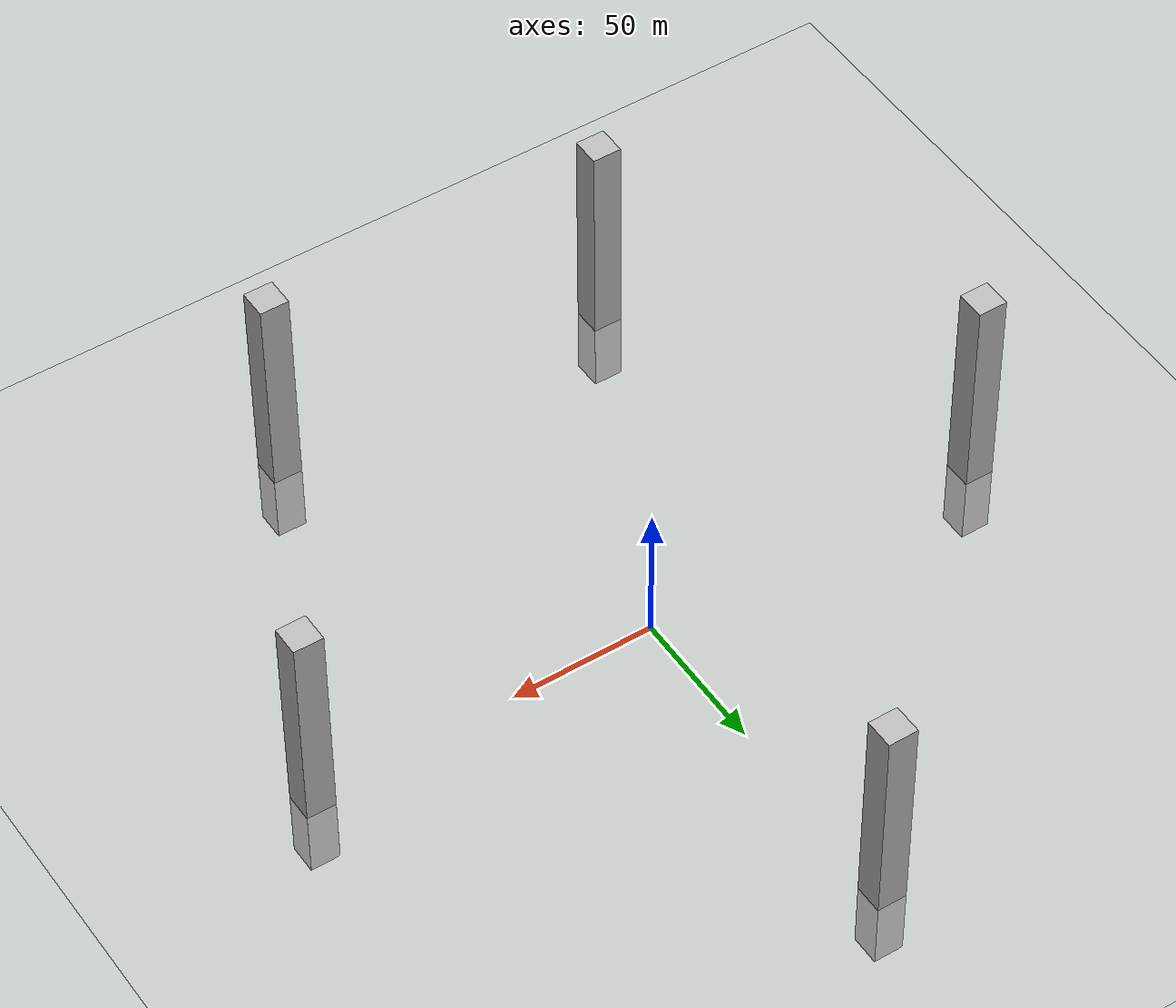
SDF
<sdf version="1.5">
 <world name="default">
  <scene><shadows>false</shadows></scene>
  <include><uri>model://sun</uri></include>
  <include><uri>model://ground_plane</uri></include>
  <include><uri>model://ground_plane</uri><pose>0 0 -0.01 0 0 0</pose></include>
  <include><name>unit_cuboid_1</name><uri>model://tall_cuboid</uri><pose>60 -120 0 0 0 0</pose></include>
  <include><name>unit_cuboid_2</name><uri>model://tall_cuboid</uri><pose>120 0 0 0 0 0</pose></include>
  <include><name>unit_cuboid_3</name><uri>model://tall_cuboid</uri><pose>0 120 0 0 0 0</pose></include>
  <include><name>unit_cuboid_4</name><uri>model://tall_cuboid</uri><pose>-120 0 0 0 0 0</pose></include>
  <include><name>unit_cuboid_5</name><uri>model://tall_cuboid</uri><pose>-60 -120 0 0 0 0</pose></include>
 </world>
</sdf>

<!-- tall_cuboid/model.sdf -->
<sdf version="1.6">
  <model name="tall_cuboid">
    <static>true</static>
    <link name="link">
      <pose>0 0 25 0 0 0</pose>
      <collision name="collision">
        <geometry>
          <box>
            <size>10 10 100</size>
          </box>
        </geometry>
      </collision>
      <visual name='visual'>
        <geometry>
          <box>
            <size>10 10 100</size>
          </box>
        </geometry>
      </visual>
    </link>
  </model>
</sdf>
